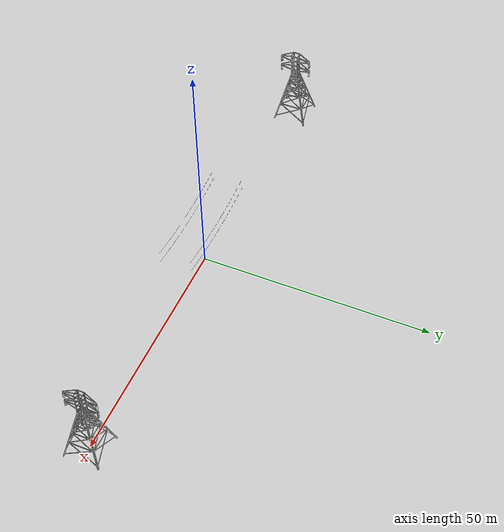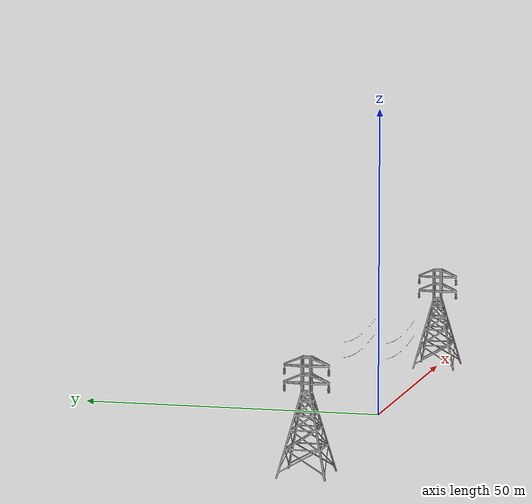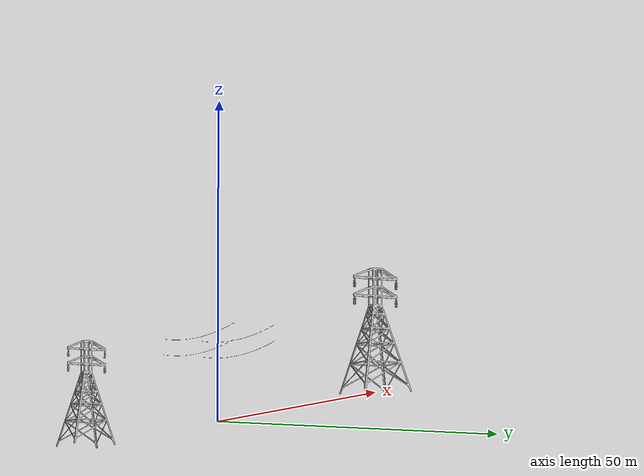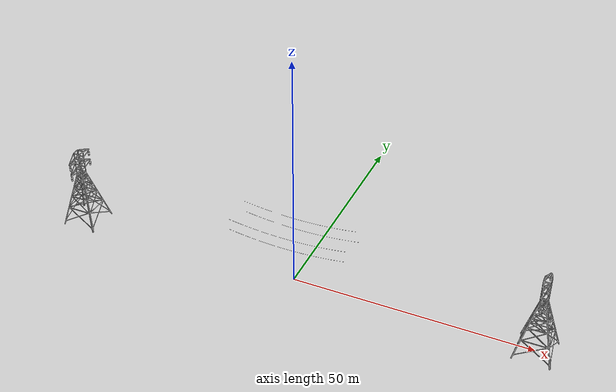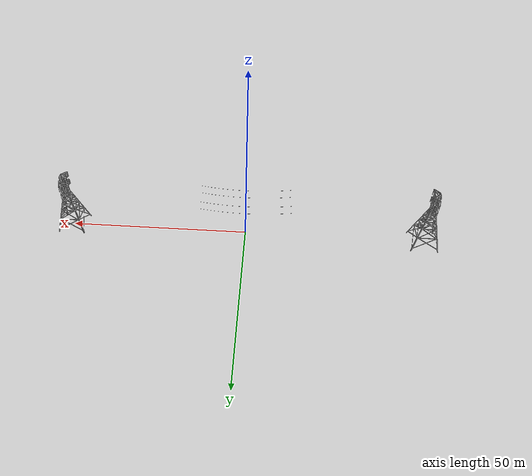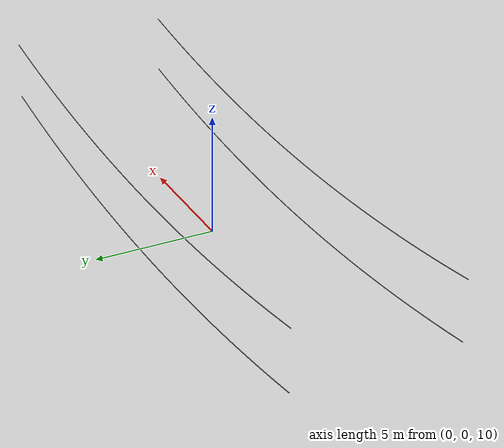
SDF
<?xml version="1.0" ?>

  <sdf version="1.5">
    <model name="electric_tower">

      <include>
        <uri>model://electric_tower_base</uri>
        <name>electric_tower_base_0</name>
        <pose>50 0.0 3.7 0 0 0.0</pose>
      </include>

      <include>
        <uri>model://electric_tower_base</uri>
        <name>electric_tower_base_1</name>
        <pose>-50.0 0.0 3.7 0 0 0.0</pose>
      </include>

      <include>
        <uri>model://electric_tower_line</uri>
        <name>electric_tower_line_0</name>
        <pose>-0.0 3.35 13.8 0 0 0.0</pose>
      </include>

      <include>
        <uri>model://electric_tower_line</uri>
        <name>electric_tower_line_1</name>
        <pose>-0.0 -3.35 13.8 0 0 0.0</pose>
      </include>

      <include>
        <uri>model://electric_tower_line</uri>
        <name>electric_tower_line_2</name>
        <pose>-0.0 3.35 11.3 0 0 0.0</pose>
      </include>

      <include>
        <uri>model://electric_tower_line</uri>
        <name>electric_tower_line_3</name>
        <pose>-0.0 -3.35 11.3 0 0 0.0</pose>
      </include>

</model>
</sdf>

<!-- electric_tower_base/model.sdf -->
<sdf version="1.5">
    <model name="electric_tower_base">
      <static>true</static>
      <link name='base'>
      <pose>0.0 -0.0 0.0 0 -0 0</pose>
      <inertial>
        <pose>0 0 0 0 -0 0</pose>
        <mass>0.025</mass>
        <inertia>
          <ixx>9.75e-06</ixx>
          <ixy>0</ixy>
          <ixz>0</ixz>
          <iyy>0.000166704</iyy>
          <iyz>0</iyz>
          <izz>0.000167604</izz>
        </inertia>
      </inertial>
      <collision name='base_collision'>
        <pose>0 0 0 0 -0 0</pose>
        <geometry>
          <mesh>
            <scale>1 1 1</scale>
            <uri>model://electric_tower_base/meshes/base.STL</uri>
          </mesh>
        </geometry>
        <surface>
          <contact>
            <ode />
          </contact>
          <friction>
            <ode />
          </friction>
        </surface>
      </collision>
      <visual name='base_visual'>
        <pose>0 0 0 0 -0 0</pose>
        <geometry>
          <mesh>
            <scale>1 1 1</scale>
            <uri>model://electric_tower_base/meshes/base.STL</uri>
          </mesh>
        </geometry>
        <material>
          <script>
            <uri>__default__</uri>
          </script>
        </material>
      </visual>
      <gravity>1</gravity>
      <velocity_decay />
      <self_collide>0</self_collide>
    </link>
  </model>
</sdf>

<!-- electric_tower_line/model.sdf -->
<sdf version="1.5">
    <model name="electric_tower_line">
      <static>true</static>
      <link name='line'>
      <pose>0.0 -0.0 0.0 0 -0 0</pose>
      <inertial>
        <pose>0 0 0 0 -0 0</pose>
        <mass>0.025</mass>
        <inertia>
          <ixx>9.75e-06</ixx>
          <ixy>0</ixy>
          <ixz>0</ixz>
          <iyy>0.000166704</iyy>
          <iyz>0</iyz>
          <izz>0.000167604</izz>
        </inertia>
      </inertial>
      <collision name='line_collision'>
        <pose>0 0 0 0 -0 0</pose>
        <geometry>
          <mesh>
            <scale>1 1 1</scale>
            <uri>model://electric_tower_line/meshes/line.STL</uri>
          </mesh>
        </geometry>
        <surface>
          <contact>
            <ode />
          </contact>
          <friction>
            <ode />
          </friction>
        </surface>
      </collision>
      <visual name='line_visual'>
        <pose>0 0 0 0 -0 0</pose>
        <geometry>
          <mesh>
            <scale>1 1 1</scale>
            <uri>model://electric_tower_line/meshes/line.STL</uri>
          </mesh>
        </geometry>
        <material>
          <script>
            <uri>__default__</uri>
          </script>
        </material>
      </visual>
      <gravity>1</gravity>
      <velocity_decay />
      <self_collide>0</self_collide>
    </link>
  </model>
</sdf>
